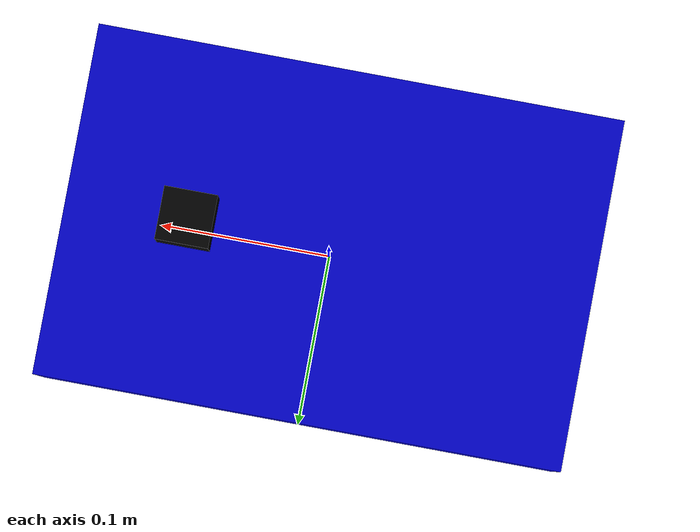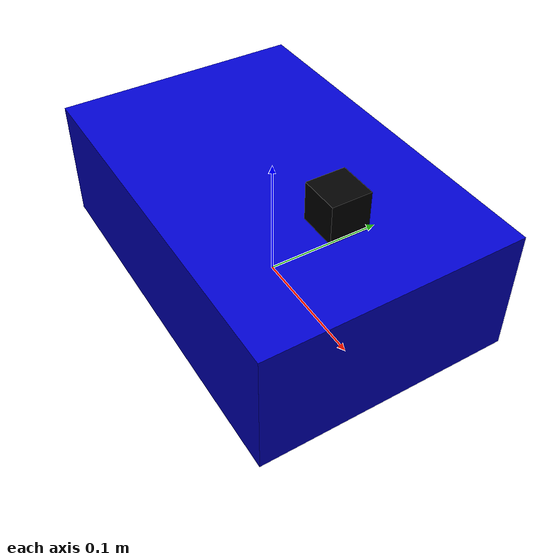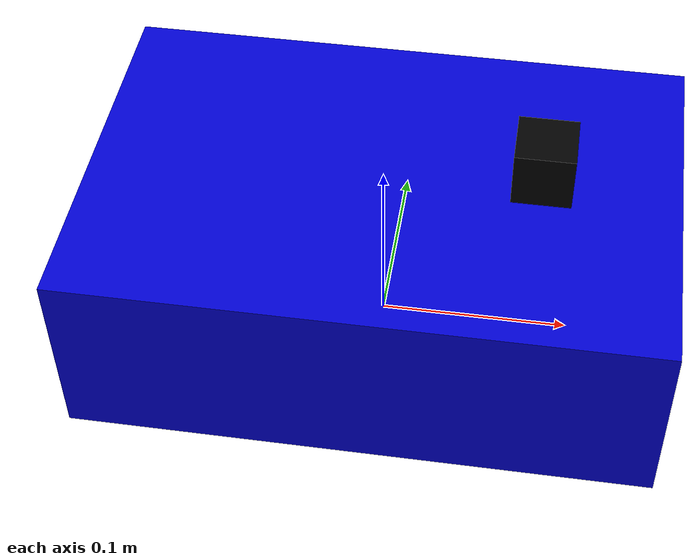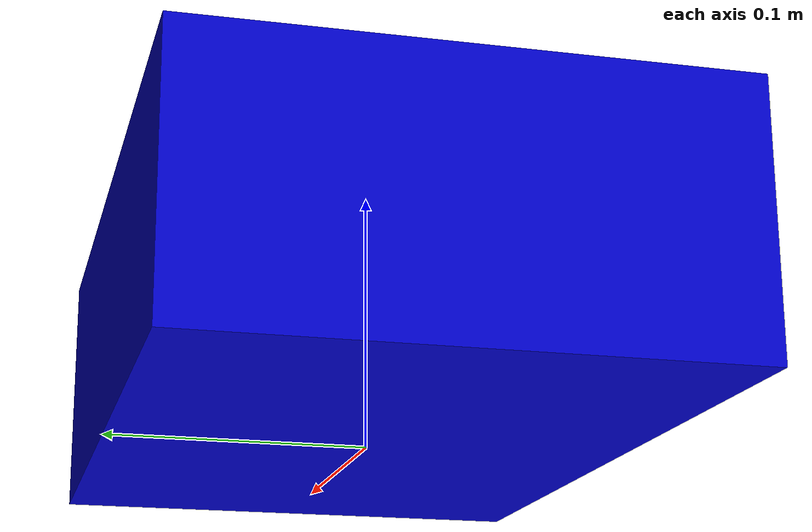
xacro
<?xml version="1.0"?>
<robot xmlns:xacro="http://www.ros.org/wiki/xacro" name="minimal_robot">

  <!-- Base Link - Main robot body -->
  <link name="base_link">
    <visual>
      <origin xyz="0 0 0.05" rpy="0 0 0"/>
      <geometry>
        <box size="0.3 0.2 0.1"/>
      </geometry>
      <material name="blue">
        <color rgba="0.0 0.0 0.8 1.0"/>
      </material>
    </visual>
    <collision>
      <origin xyz="0 0 0.05" rpy="0 0 0"/>
      <geometry>
        <box size="0.3 0.2 0.1"/>
      </geometry>
    </collision>
    <inertial>
      <origin xyz="0 0 0.05" rpy="0 0 0"/>
      <mass value="1.0"/>
      <inertia ixx="0.004" ixy="0.0" ixz="0.0"
               iyy="0.008" iyz="0.0"
               izz="0.010"/>
    </inertial>
  </link>

  <!-- Camera Link -->
  <link name="camera_link">
    <visual>
      <origin rpy="0 0 0" xyz="0 0 0"/>
      <geometry>
        <box size="0.03 0.03 0.03"/>
      </geometry>
      <material name="black">
        <color rgba="0.0 0.0 0.0 1.0"/>
      </material>
    </visual>
    <collision>
      <origin rpy="0 0 0" xyz="0 0 0"/>
      <geometry>
        <box size="0.03 0.03 0.03"/>
      </geometry>
    </collision>
  </link>

  <!-- Camera Joint - Fixed to base -->
  <joint name="camera_joint" type="fixed">
    <parent link="base_link"/>
    <child link="camera_link"/>
    <origin xyz="0.08 0.0 0.12" rpy="0 0 0"/>
  </joint>

  <!-- Camera Optical Frame -->
  <link name="camera_link_optical"></link>

  <joint name="camera_optical_joint" type="fixed">
    <parent link="camera_link"/>
    <child link="camera_link_optical"/>
    <origin xyz="0 0 0" rpy="${-pi/2} 0 ${-pi/2}"/>
  </joint>

</robot>
